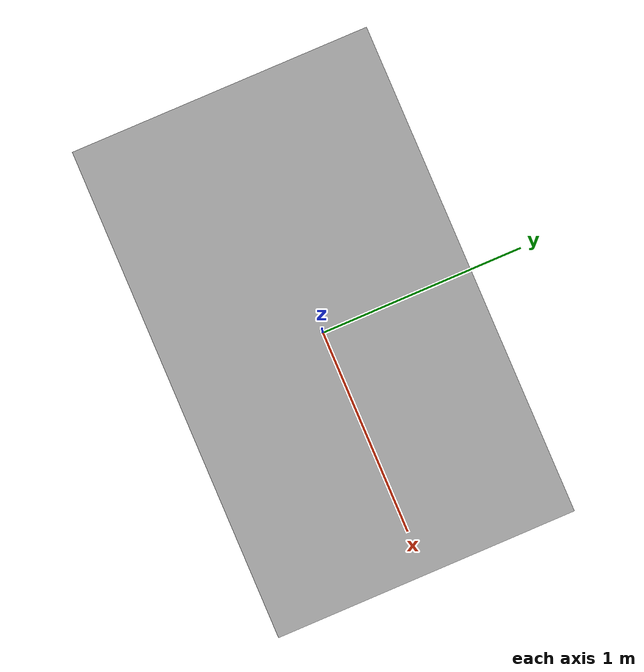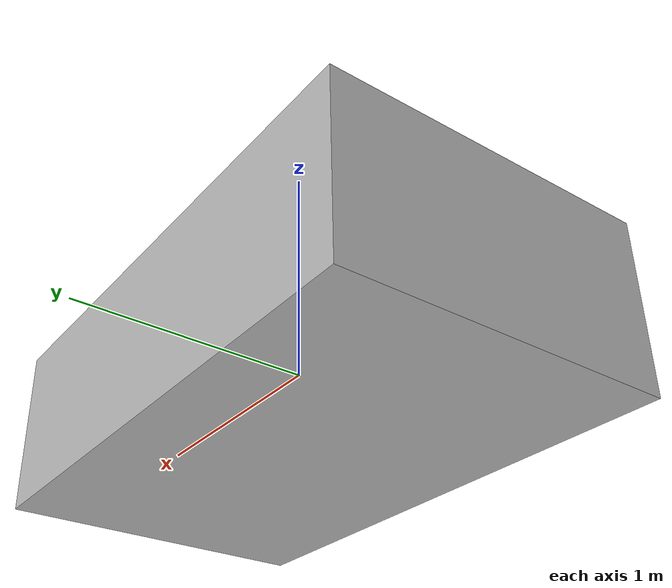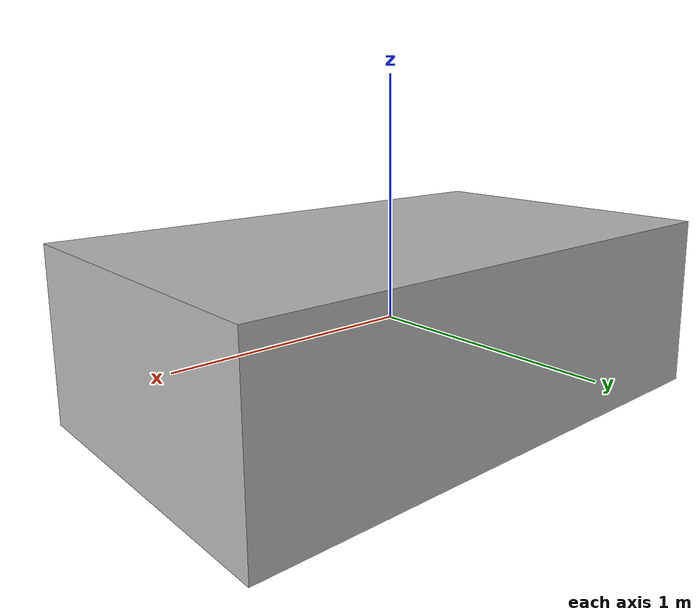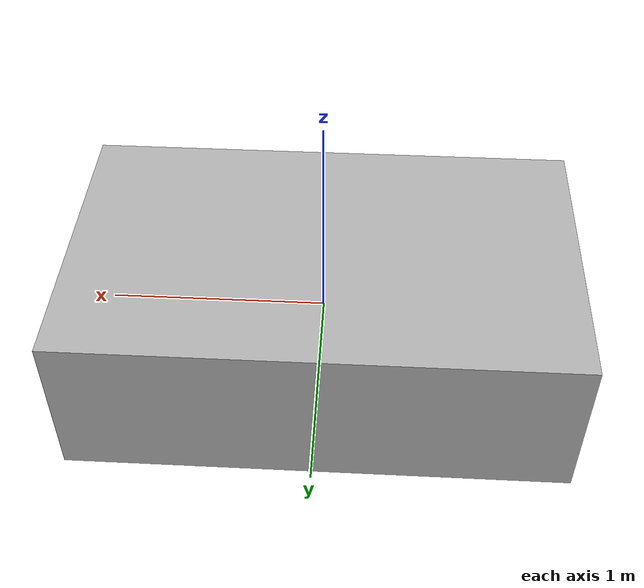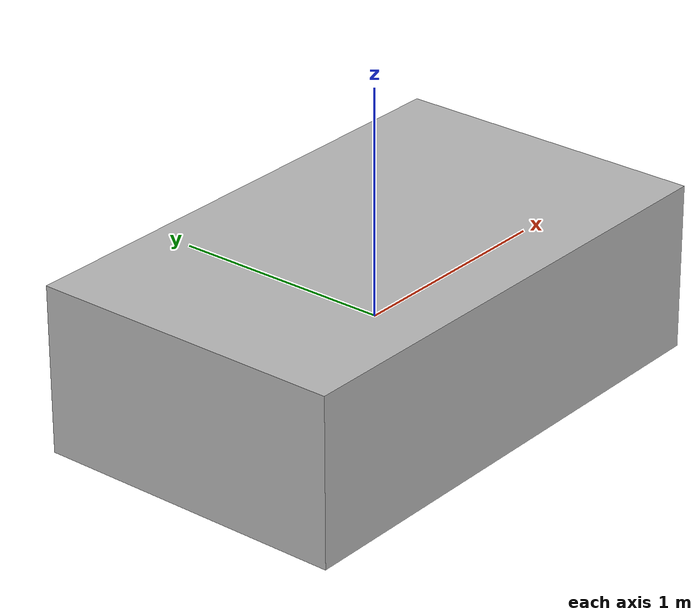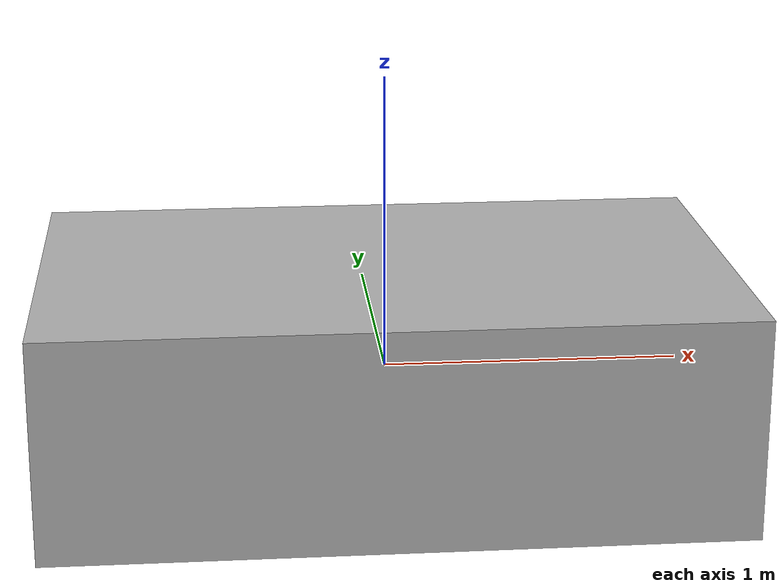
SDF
<?xml version='1.0'?>
<sdf version="1.4">
<model name="filling_line_box_5">
    <static>true</static>
    <link name="link">
      <pose>0 0 -0.005 0 0 0</pose>
      <collision name="collision">
        <geometry>
          <box>
            <size>2.3 1.4 0.74</size>
          </box>
        </geometry>
      </collision>
      <visual name="visual">
        <geometry>
          <box>
            <size>2.3 1.4 0.74</size>
          </box>
        </geometry>
      </visual>
    </link>
  </model>
</sdf>
